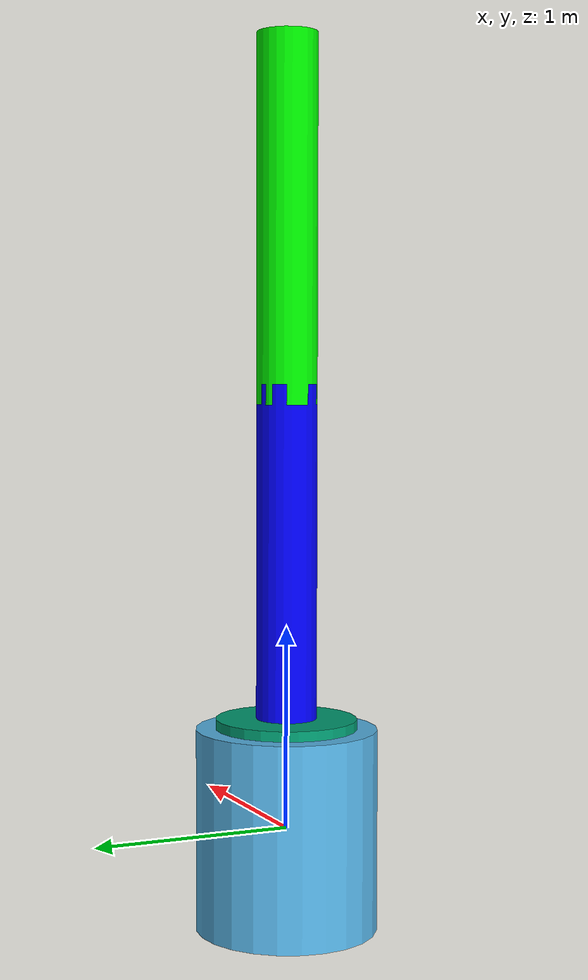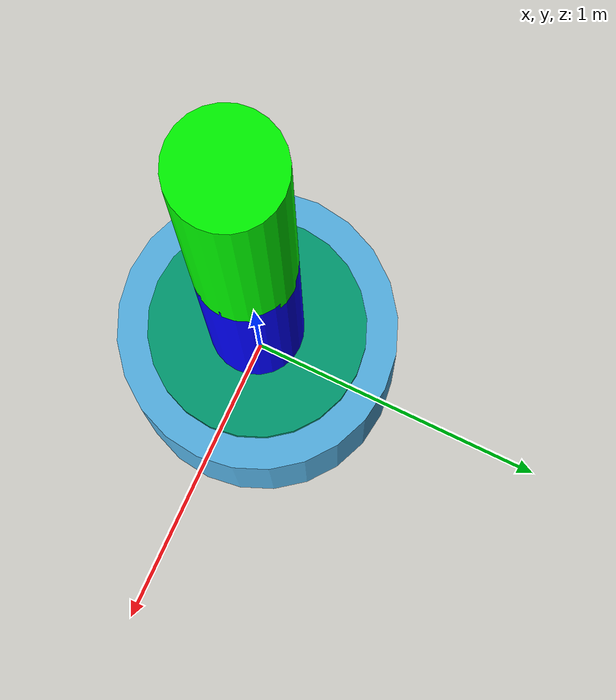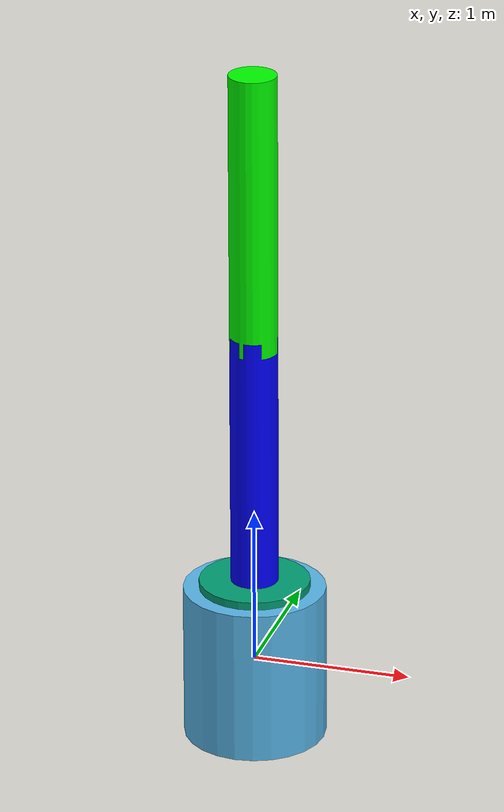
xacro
<?xml version="1.0" ?>
<robot name="rarm" xmlns:xacro="http://www.ros.org/wifi/xacro">

    <!-- Base link -->
    <xacro:property name="base_length" value="0.5"/>
    <xacro:property name="base_mass" value="12"/>
    <xacro:property name="base_z" value="0"/>

    <!-- Lower arm -->
    <xacro:property name="lower_length" value="0.5"/>
    <xacro:property name="lower_mass" value="1"/>
    <xacro:property name="lower_z" value="0"/>

    <!-- Upper arm -->
    <xacro:property name="upper_length" value="0.5"/>
    <xacro:property name="upper_mass" value="1"/>
    <xacro:property name="upper_z" value="0.8"/>

    <!-- Inertial Properties -->
    <xacro:macro name="inertials" params="mass length z">
        <inertial>
            <origin xyz="0 0 ${z}" rpy="0 0 0"/>
            <mass value="${mass}"/>
            <inertia ixx="${0.1*mass}" ixy="0.0" ixz="0.0" iyy="${0.05*mass}" iyz="0.0" izz="${0.1*mass}" />
        </inertial>
    </xacro:macro>

    <!-- Ensuring base is connected to a global stationary root  -->

    <link name="world"/>

    <joint name="fixedjoint" type="fixed">
        <parent link="world"/>
        <child link="base_link"/>
    </joint>

     <!-- Base , 2 revolute joints perpendicular to each other -->

    <link name="base_link">
        <xacro:inertials mass="${2*base_mass}" length="${base_length*2}" z="${base_z}"/>
        <visual>
            <origin rpy="0 0 0" xyz="0 0 0"/>
            <geometry>
               <cylinder radius="0.45" length="1"/>
            </geometry>
        </visual>

        <collision>
             <origin rpy="0 0 0" xyz="0 0 0"/>
                  <geometry>
                    <cylinder radius="0.45" length="1"/>
                  </geometry>
        </collision>
    </link>

        <joint name="base_joint" type="revolute">
            <axis xyz="0 0 1"/>
            <limit effort="1000.0" lower="-3.14" upper="3.14" velocity="0.5"/>
             <origin rpy="0 0 0" xyz="0 0 0.5"/>
             <parent link="base_link"/>
             <child link="base_child"/>
        </joint>

    <transmission name="base_to_lower">
        <type>transmission_interface/SimpleTransmission</type>
        <joint name="base_joint">
            <hardwareInterface>hardware_interface/EffortJointInterface</hardwareInterface>
        </joint>
        <actuator name="base_to_lower_actuator"/>
    </transmission>

    <link name="base_child">
     <xacro:inertials mass="${base_mass}" length="${base_length/2}" z="${base_z}"/>
     <visual>
            <origin rpy="0 0 0" xyz="0 0 0"/>
            <geometry>
               <cylinder radius="0.35" length="0.1"/>
            </geometry>
        </visual>
        <collision>
             <origin rpy="0 0 0" xyz="0 0 0"/>
                  <geometry>
                    <cylinder radius="0.35" length="0.1"/>
                  </geometry>
        </collision>
    </link>

        <joint name="base_elbow" type="revolute">
            <axis xyz="0 1 0"/>
            <limit effort="1000.0" lower="-3.14" upper="3.14" velocity="0.5"/>
            <origin rpy="0 0 0" xyz="0 0 0"/>
            <parent link="base_child"/>
            <child link="low_elbow"/>
        </joint>

    <transmission name="base_to_lower">
        <type>transmission_interface/SimpleTransmission</type>
        <joint name="base_elbow">
         <hardwareInterface>hardware_interface/EffortJointInterface</hardwareInterface>
        </joint>
         <actuator name="base_to_lower_actuator"/>
    </transmission>

<!-- Lower link : Blue-->

    <link name="low_elbow">
     <xacro:inertials mass="${lower_mass}" length="${lower_length/2}" z="${lower_z}"/>
        <visual>
            <origin rpy="0 0 0" xyz="0 0 0.8"/>
            <geometry>
                <cylinder radius="0.15" length="1.8"/>
            </geometry>
            <material name="Blue">
             <color rgba="0.0 0.0 1.0 1.0"/>
            </material>
        </visual>

        <collision>
            <origin rpy="0 0 0" xyz="0 0 0.8"/>
                <geometry>
                     <cylinder radius="0.15" length="1.8"/>
                </geometry>
        </collision>
    </link>

        <joint name="elbow_joint" type="revolute">
            <axis xyz="0 1 0"/>
            <limit effort="1000.0" lower="-3.14" upper="3.14" velocity="0.5"/>
            <origin rpy="0 0 0" xyz="0 0 1.7"/>
            <parent link="low_elbow"/>
            <child link="upper_elbow"/>
        </joint>

    <transmission name="lower_to_upper">
            <type>transmission_interface/SimpleTransmission</type>
            <joint name="elbow_joint">
                <hardwareInterface>hardware_interface/EffortJointInterface</hardwareInterface>
            </joint>
            <actuator name="lower_to_upper_actuator"/>
    </transmission>

    <!-- Upper Link : Green -->

    <link name="upper_elbow" type="revolute">
        <xacro:inertials mass="${upper_mass}" length="${upper_length/2}" z="${upper_z}"/>

        <visual>
            <origin rpy="0 0 0" xyz="0 0 0.8"/>
            <geometry>
                <cylinder radius="0.15" length="1.8"/>
            </geometry>
            <material name="Green">
                 <color rgba="0.0 1.0 0.0 1.0"/>
       </material>
        </visual>

        <collision>
            <origin rpy="0 0 0" xyz="0 0 1.4"/>
                <geometry>
                    <cylinder radius="0.15" length="1.8"/>
                </geometry>
        </collision>
    </link>

    <gazebo>
        <plugin name="gazebo_ros_control" filename="libgazebo_ros_control.so">
        </plugin>
    </gazebo>

</robot>
